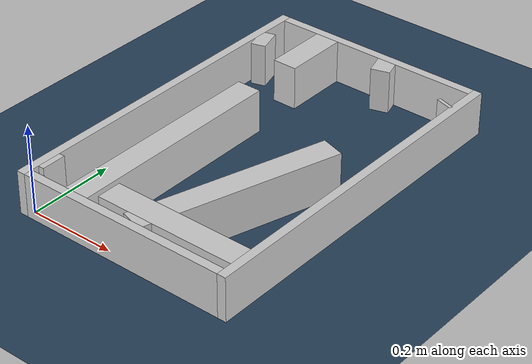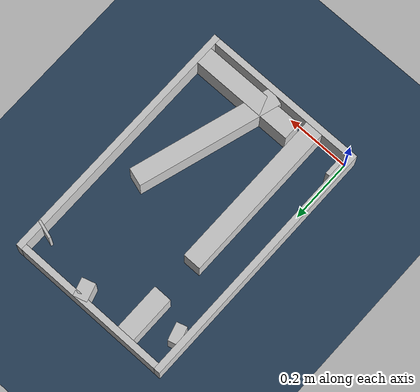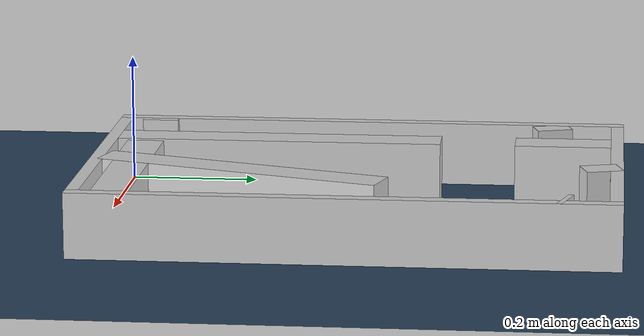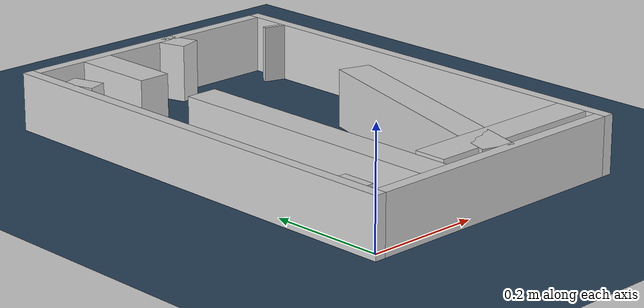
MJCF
<?xml version="1.0" ?>
<mujoco model="generated_real_template">
  <compiler angle="degree"/>
  <option timestep="0.002" integrator="implicitfast" iterations="100" cone="elliptic"/>
  <default>
    <geom density="1"/>
  </default>
  <asset>
    <texture builtin="gradient" height="3072" rgb1="0.3 0.5 0.7" rgb2="0 0 0" type="skybox" width="512"/>
    <texture builtin="checker" height="300" mark="edge" markrgb="0.8 0.8 0.8" name="groundplane" rgb1="0.2 0.3 0.4" rgb2="0.1 0.2 0.3" type="2d" width="300"/>
    <material name="groundplane" reflectance="0.2" texrepeat="5 5" texture="groundplane" texuniform="true"/>
  </asset>
  <worldbody>
    <light dir="0 0 -1" directional="true" pos="0 0 1.5"/>
    <geom name="floor" type="plane" condim="4" friction="0.5 0.005 0.001" material="groundplane" size="0 0 0.05"/>
    <body name="walls">
      <geom name="wall_boundary_left" type="box" condim="4" friction="1.0 0.005 0.0001" rgba="0.8 0.8 0.8 1" pos="-0.010000 0.387500 0.050000" euler="0 0 0.000000" size="0.010000 0.407500 0.050000"/>
      <geom name="wall_boundary_right" type="box" condim="4" friction="1.0 0.005 0.0001" rgba="0.8 0.8 0.8 1" pos="0.500000 0.387500 0.050000" euler="0 0 0.000000" size="0.010000 0.407500 0.050000"/>
      <geom name="wall_boundary_bottom" type="box" condim="4" friction="1.0 0.005 0.0001" rgba="0.8 0.8 0.8 1" pos="0.245000 -0.010000 0.050000" euler="0 0 0.000000" size="0.245000 0.010000 0.050000"/>
      <geom name="wall_boundary_top" type="box" condim="4" friction="1.0 0.005 0.0001" rgba="0.8 0.8 0.8 1" pos="0.245000 0.785000 0.050000" euler="0 0 0.000000" size="0.245000 0.010000 0.050000"/>
      <geom name="wall_inner_1_1" type="box" condim="4" friction="1.0 0.005 0.0001" rgba="0.8 0.8 0.8 1" pos="0.006877 0.046290 0.050000" euler="0 0 0.000000" size="0.006877 0.028500 0.050000"/>
      <geom name="wall_inner_1_2" type="box" condim="4" friction="1.0 0.005 0.0001" rgba="0.8 0.8 0.8 1" pos="0.325635 0.046290 0.050000" euler="0 0 0.000000" size="0.164365 0.028500 0.050000"/>
      <geom name="wall_inner_2_1" type="box" condim="4" friction="1.0 0.005 0.0001" rgba="0.8 0.8 0.8 1" pos="0.285620 0.761552 0.050000" euler="0 0 -163.448478" size="0.021509 0.028500 0.050000"/>
      <geom name="wall_inner_2_2" type="box" condim="4" friction="1.0 0.005 0.0001" rgba="0.8 0.8 0.8 1" pos="0.016197 0.681482 0.050000" euler="0 0 -163.448478" size="0.016898 0.028500 0.050000"/>
      <geom name="wall_inner_3_1" type="box" condim="4" friction="1.0 0.005 0.0001" rgba="0.8 0.8 0.8 1" pos="0.481573 0.710847 0.050000" euler="0 0 -107.096616" size="0.004032 0.028500 0.050000"/>
      <geom name="wall_inner_3_2" type="box" condim="4" friction="1.0 0.005 0.0001" rgba="0.8 0.8 0.8 1" pos="0.330124 0.218451 0.050000" euler="0 0 -107.096616" size="0.228551 0.028500 0.050000"/>
      <geom name="wall_inner_4_1" type="box" condim="4" friction="1.0 0.005 0.0001" rgba="0.8 0.8 0.8 1" pos="0.120793 0.254421 0.050000" euler="0 0 90.000000" size="0.254421 0.028500 0.050000"/>
      <geom name="wall_inner_4_2" type="box" condim="4" friction="1.0 0.005 0.0001" rgba="0.8 0.8 0.8 1" pos="0.120793 0.700382 0.050000" euler="0 0 90.000000" size="0.074618 0.028500 0.050000"/>
    </body>
  </worldbody>
</mujoco>
